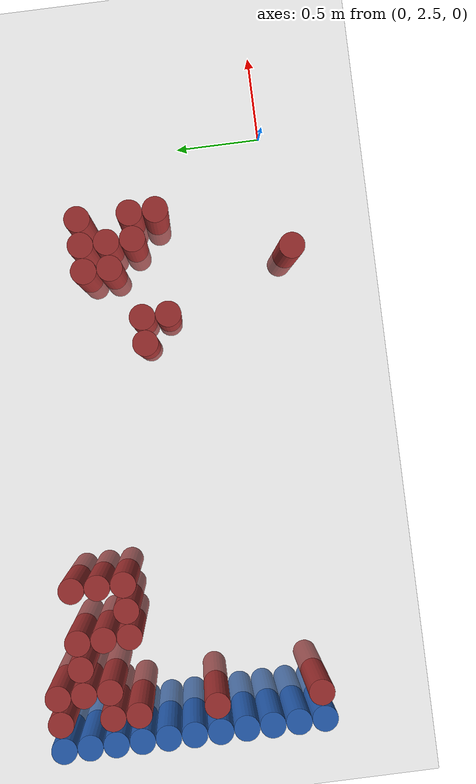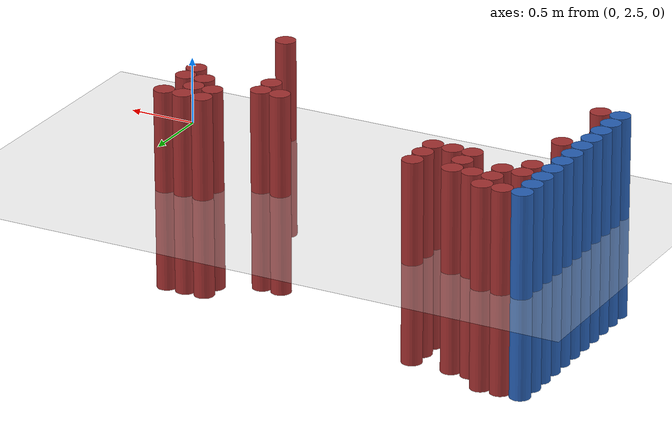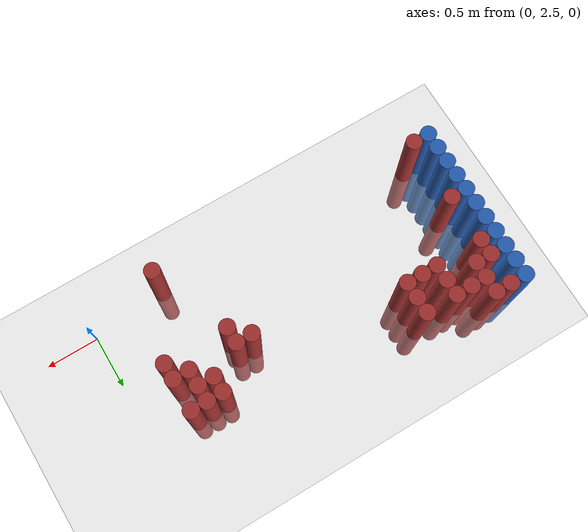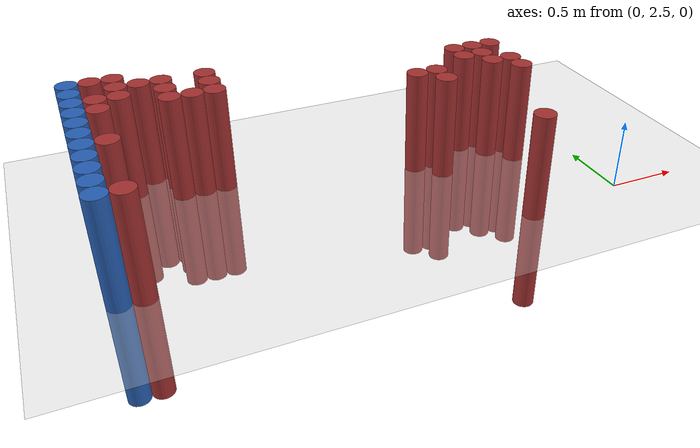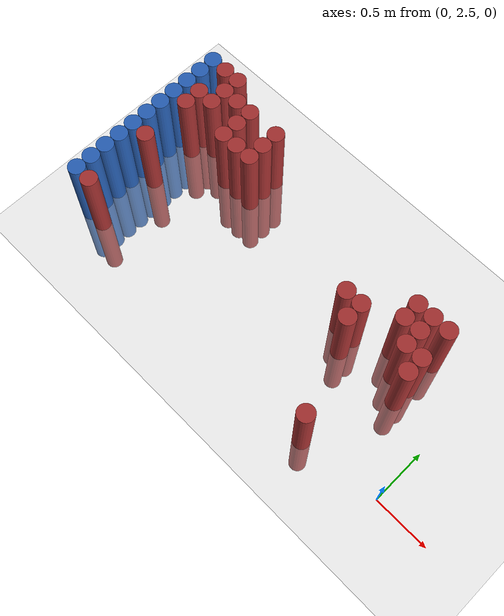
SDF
<sdf version="1.6">
 <world name="default">
  <model name="ground_plane">
   <static>1</static>
   <link name="link">
    <collision name="collision">
     <geometry><plane><normal>0 0 1</normal><size>100 100</size></plane></geometry>
     <surface><friction><ode><mu>100</mu><mu2>50</mu2></ode></friction></surface>
    </collision>
    <visual name="visual">
     <cast_shadows>0</cast_shadows>
     <geometry><plane><normal>0 0 1</normal><size>100 100</size></plane></geometry>
     <material>
      <script><uri>file://media/materials/scripts/gazebo.material</uri><name>Gazebo/Grey</name></script>
     </material>
    </visual>
   </link>
  </model>
  <model name="unit_cylinder_149">
   <static>1</static>
   <pose>-3.425000 2.575000 0.000000 0.000000 0.000000 0.000000</pose>
   <link name="link">
    <inertial>
     <mass>1</mass>
     <inertia><ixx>0.145833</ixx><ixy>0</ixy><ixz>0</ixz><iyy>0.145833</iyy><iyz>0</iyz><izz>0.125</izz></inertia>
    </inertial>
    <collision name="collision">
     <geometry><cylinder><radius>0.075000</radius><length>1.5</length></cylinder></geometry>
    </collision>
    <visual name="visual">
     <geometry><cylinder><radius>0.075000</radius><length>1.5</length></cylinder></geometry>
     <material>
      <ambient>0.152000 0.379000 0.720000 1</ambient>
      <diffuse>0.152000 0.379000 0.720000 1</diffuse>
     </material>
     <material>
      <script><name>Gazebo/Grey</name><uri>file://media/materials/scripts/gazebo.material</uri></script>
     </material>
    </visual>
   </link>
  </model>
  <model name="unit_cylinder_151">
   <static>1</static>
   <pose>-3.425000 2.725000 0.000000 0.000000 0.000000 0.000000</pose>
   <link name="link">
    <inertial>
     <mass>1</mass>
     <inertia><ixx>0.145833</ixx><ixy>0</ixy><ixz>0</ixz><iyy>0.145833</iyy><iyz>0</iyz><izz>0.125</izz></inertia>
    </inertial>
    <collision name="collision">
     <geometry><cylinder><radius>0.075000</radius><length>1.5</length></cylinder></geometry>
    </collision>
    <visual name="visual">
     <geometry><cylinder><radius>0.075000</radius><length>1.5</length></cylinder></geometry>
     <material>
      <ambient>0.152000 0.379000 0.720000 1</ambient>
      <diffuse>0.152000 0.379000 0.720000 1</diffuse>
     </material>
     <material>
      <script><name>Gazebo/Grey</name><uri>file://media/materials/scripts/gazebo.material</uri></script>
     </material>
    </visual>
   </link>
  </model>
  <model name="unit_cylinder_153">
   <static>1</static>
   <pose>-3.425000 2.875000 0.000000 0.000000 0.000000 0.000000</pose>
   <link name="link">
    <inertial>
     <mass>1</mass>
     <inertia><ixx>0.145833</ixx><ixy>0</ixy><ixz>0</ixz><iyy>0.145833</iyy><iyz>0</iyz><izz>0.125</izz></inertia>
    </inertial>
    <collision name="collision">
     <geometry><cylinder><radius>0.075000</radius><length>1.5</length></cylinder></geometry>
    </collision>
    <visual name="visual">
     <geometry><cylinder><radius>0.075000</radius><length>1.5</length></cylinder></geometry>
     <material>
      <ambient>0.152000 0.379000 0.720000 1</ambient>
      <diffuse>0.152000 0.379000 0.720000 1</diffuse>
     </material>
     <material>
      <script><name>Gazebo/Grey</name><uri>file://media/materials/scripts/gazebo.material</uri></script>
     </material>
    </visual>
   </link>
  </model>
  <model name="unit_cylinder_155">
   <static>1</static>
   <pose>-3.425000 3.025000 0.000000 0.000000 0.000000 0.000000</pose>
   <link name="link">
    <inertial>
     <mass>1</mass>
     <inertia><ixx>0.145833</ixx><ixy>0</ixy><ixz>0</ixz><iyy>0.145833</iyy><iyz>0</iyz><izz>0.125</izz></inertia>
    </inertial>
    <collision name="collision">
     <geometry><cylinder><radius>0.075000</radius><length>1.5</length></cylinder></geometry>
    </collision>
    <visual name="visual">
     <geometry><cylinder><radius>0.075000</radius><length>1.5</length></cylinder></geometry>
     <material>
      <ambient>0.152000 0.379000 0.720000 1</ambient>
      <diffuse>0.152000 0.379000 0.720000 1</diffuse>
     </material>
     <material>
      <script><name>Gazebo/Grey</name><uri>file://media/materials/scripts/gazebo.material</uri></script>
     </material>
    </visual>
   </link>
  </model>
  <model name="unit_cylinder_157">
   <static>1</static>
   <pose>-3.425000 3.175000 0.000000 0.000000 0.000000 0.000000</pose>
   <link name="link">
    <inertial>
     <mass>1</mass>
     <inertia><ixx>0.145833</ixx><ixy>0</ixy><ixz>0</ixz><iyy>0.145833</iyy><iyz>0</iyz><izz>0.125</izz></inertia>
    </inertial>
    <collision name="collision">
     <geometry><cylinder><radius>0.075000</radius><length>1.5</length></cylinder></geometry>
    </collision>
    <visual name="visual">
     <geometry><cylinder><radius>0.075000</radius><length>1.5</length></cylinder></geometry>
     <material>
      <ambient>0.152000 0.379000 0.720000 1</ambient>
      <diffuse>0.152000 0.379000 0.720000 1</diffuse>
     </material>
     <material>
      <script><name>Gazebo/Grey</name><uri>file://media/materials/scripts/gazebo.material</uri></script>
     </material>
    </visual>
   </link>
  </model>
  <model name="unit_cylinder_159">
   <static>1</static>
   <pose>-3.425000 3.325000 0.000000 0.000000 0.000000 0.000000</pose>
   <link name="link">
    <inertial>
     <mass>1</mass>
     <inertia><ixx>0.145833</ixx><ixy>0</ixy><ixz>0</ixz><iyy>0.145833</iyy><iyz>0</iyz><izz>0.125</izz></inertia>
    </inertial>
    <collision name="collision">
     <geometry><cylinder><radius>0.075000</radius><length>1.5</length></cylinder></geometry>
    </collision>
    <visual name="visual">
     <geometry><cylinder><radius>0.075000</radius><length>1.5</length></cylinder></geometry>
     <material>
      <ambient>0.152000 0.379000 0.720000 1</ambient>
      <diffuse>0.152000 0.379000 0.720000 1</diffuse>
     </material>
     <material>
      <script><name>Gazebo/Grey</name><uri>file://media/materials/scripts/gazebo.material</uri></script>
     </material>
    </visual>
   </link>
  </model>
  <model name="unit_cylinder_161">
   <static>1</static>
   <pose>-3.425000 3.475000 0.000000 0.000000 0.000000 0.000000</pose>
   <link name="link">
    <inertial>
     <mass>1</mass>
     <inertia><ixx>0.145833</ixx><ixy>0</ixy><ixz>0</ixz><iyy>0.145833</iyy><iyz>0</iyz><izz>0.125</izz></inertia>
    </inertial>
    <collision name="collision">
     <geometry><cylinder><radius>0.075000</radius><length>1.5</length></cylinder></geometry>
    </collision>
    <visual name="visual">
     <geometry><cylinder><radius>0.075000</radius><length>1.5</length></cylinder></geometry>
     <material>
      <ambient>0.152000 0.379000 0.720000 1</ambient>
      <diffuse>0.152000 0.379000 0.720000 1</diffuse>
     </material>
     <material>
      <script><name>Gazebo/Grey</name><uri>file://media/materials/scripts/gazebo.material</uri></script>
     </material>
    </visual>
   </link>
  </model>
  <model name="unit_cylinder_163">
   <static>1</static>
   <pose>-3.425000 3.625000 0.000000 0.000000 0.000000 0.000000</pose>
   <link name="link">
    <inertial>
     <mass>1</mass>
     <inertia><ixx>0.145833</ixx><ixy>0</ixy><ixz>0</ixz><iyy>0.145833</iyy><iyz>0</iyz><izz>0.125</izz></inertia>
    </inertial>
    <collision name="collision">
     <geometry><cylinder><radius>0.075000</radius><length>1.5</length></cylinder></geometry>
    </collision>
    <visual name="visual">
     <geometry><cylinder><radius>0.075000</radius><length>1.5</length></cylinder></geometry>
     <material>
      <ambient>0.152000 0.379000 0.720000 1</ambient>
      <diffuse>0.152000 0.379000 0.720000 1</diffuse>
     </material>
     <material>
      <script><name>Gazebo/Grey</name><uri>file://media/materials/scripts/gazebo.material</uri></script>
     </material>
    </visual>
   </link>
  </model>
  <model name="unit_cylinder_165">
   <static>1</static>
   <pose>-3.425000 3.775000 0.000000 0.000000 0.000000 0.000000</pose>
   <link name="link">
    <inertial>
     <mass>1</mass>
     <inertia><ixx>0.145833</ixx><ixy>0</ixy><ixz>0</ixz><iyy>0.145833</iyy><iyz>0</iyz><izz>0.125</izz></inertia>
    </inertial>
    <collision name="collision">
     <geometry><cylinder><radius>0.075000</radius><length>1.5</length></cylinder></geometry>
    </collision>
    <visual name="visual">
     <geometry><cylinder><radius>0.075000</radius><length>1.5</length></cylinder></geometry>
     <material>
      <ambient>0.152000 0.379000 0.720000 1</ambient>
      <diffuse>0.152000 0.379000 0.720000 1</diffuse>
     </material>
     <material>
      <script><name>Gazebo/Grey</name><uri>file://media/materials/scripts/gazebo.material</uri></script>
     </material>
    </visual>
   </link>
  </model>
  <model name="unit_cylinder_167">
   <static>1</static>
   <pose>-3.425000 3.925000 0.000000 0.000000 0.000000 0.000000</pose>
   <link name="link">
    <inertial>
     <mass>1</mass>
     <inertia><ixx>0.145833</ixx><ixy>0</ixy><ixz>0</ixz><iyy>0.145833</iyy><iyz>0</iyz><izz>0.125</izz></inertia>
    </inertial>
    <collision name="collision">
     <geometry><cylinder><radius>0.075000</radius><length>1.5</length></cylinder></geometry>
    </collision>
    <visual name="visual">
     <geometry><cylinder><radius>0.075000</radius><length>1.5</length></cylinder></geometry>
     <material>
      <ambient>0.152000 0.379000 0.720000 1</ambient>
      <diffuse>0.152000 0.379000 0.720000 1</diffuse>
     </material>
     <material>
      <script><name>Gazebo/Grey</name><uri>file://media/materials/scripts/gazebo.material</uri></script>
     </material>
    </visual>
   </link>
  </model>
  <model name="unit_cylinder_169">
   <static>1</static>
   <pose>-3.425000 4.075000 0.000000 0.000000 0.000000 0.000000</pose>
   <link name="link">
    <inertial>
     <mass>1</mass>
     <inertia><ixx>0.145833</ixx><ixy>0</ixy><ixz>0</ixz><iyy>0.145833</iyy><iyz>0</iyz><izz>0.125</izz></inertia>
    </inertial>
    <collision name="collision">
     <geometry><cylinder><radius>0.075000</radius><length>1.5</length></cylinder></geometry>
    </collision>
    <visual name="visual">
     <geometry><cylinder><radius>0.075000</radius><length>1.5</length></cylinder></geometry>
     <material>
      <ambient>0.152000 0.379000 0.720000 1</ambient>
      <diffuse>0.152000 0.379000 0.720000 1</diffuse>
     </material>
     <material>
      <script><name>Gazebo/Grey</name><uri>file://media/materials/scripts/gazebo.material</uri></script>
     </material>
    </visual>
   </link>
  </model>
  <model name="unit_cylinder_238">
   <static>1</static>
   <pose>-3.425000 2.575000 0.000000 0.000000 0.000000 0.000000</pose>
   <link name="link">
    <inertial>
     <mass>1</mass>
     <inertia><ixx>0.145833</ixx><ixy>0</ixy><ixz>0</ixz><iyy>0.145833</iyy><iyz>0</iyz><izz>0.125</izz></inertia>
    </inertial>
    <collision name="collision">
     <geometry><cylinder><radius>0.075000</radius><length>1.5</length></cylinder></geometry>
    </collision>
    <visual name="visual">
     <geometry><cylinder><radius>0.075000</radius><length>1.5</length></cylinder></geometry>
     <material>
      <ambient>0.152000 0.379000 0.720000 1</ambient>
      <diffuse>0.152000 0.379000 0.720000 1</diffuse>
     </material>
     <material>
      <script><name>Gazebo/Grey</name><uri>file://media/materials/scripts/gazebo.material</uri></script>
     </material>
    </visual>
   </link>
  </model>
  <model name="unit_cylinder_239">
   <static>1</static>
   <pose>-3.425000 2.725000 0.000000 0.000000 0.000000 0.000000</pose>
   <link name="link">
    <inertial>
     <mass>1</mass>
     <inertia><ixx>0.145833</ixx><ixy>0</ixy><ixz>0</ixz><iyy>0.145833</iyy><iyz>0</iyz><izz>0.125</izz></inertia>
    </inertial>
    <collision name="collision">
     <geometry><cylinder><radius>0.075000</radius><length>1.5</length></cylinder></geometry>
    </collision>
    <visual name="visual">
     <geometry><cylinder><radius>0.075000</radius><length>1.5</length></cylinder></geometry>
     <material>
      <ambient>0.152000 0.379000 0.720000 1</ambient>
      <diffuse>0.152000 0.379000 0.720000 1</diffuse>
     </material>
     <material>
      <script><name>Gazebo/Grey</name><uri>file://media/materials/scripts/gazebo.material</uri></script>
     </material>
    </visual>
   </link>
  </model>
  <model name="unit_cylinder_240">
   <static>1</static>
   <pose>-3.425000 2.875000 0.000000 0.000000 0.000000 0.000000</pose>
   <link name="link">
    <inertial>
     <mass>1</mass>
     <inertia><ixx>0.145833</ixx><ixy>0</ixy><ixz>0</ixz><iyy>0.145833</iyy><iyz>0</iyz><izz>0.125</izz></inertia>
    </inertial>
    <collision name="collision">
     <geometry><cylinder><radius>0.075000</radius><length>1.5</length></cylinder></geometry>
    </collision>
    <visual name="visual">
     <geometry><cylinder><radius>0.075000</radius><length>1.5</length></cylinder></geometry>
     <material>
      <ambient>0.152000 0.379000 0.720000 1</ambient>
      <diffuse>0.152000 0.379000 0.720000 1</diffuse>
     </material>
     <material>
      <script><name>Gazebo/Grey</name><uri>file://media/materials/scripts/gazebo.material</uri></script>
     </material>
    </visual>
   </link>
  </model>
  <model name="unit_cylinder_241">
   <static>1</static>
   <pose>-3.425000 3.025000 0.000000 0.000000 0.000000 0.000000</pose>
   <link name="link">
    <inertial>
     <mass>1</mass>
     <inertia><ixx>0.145833</ixx><ixy>0</ixy><ixz>0</ixz><iyy>0.145833</iyy><iyz>0</iyz><izz>0.125</izz></inertia>
    </inertial>
    <collision name="collision">
     <geometry><cylinder><radius>0.075000</radius><length>1.5</length></cylinder></geometry>
    </collision>
    <visual name="visual">
     <geometry><cylinder><radius>0.075000</radius><length>1.5</length></cylinder></geometry>
     <material>
      <ambient>0.152000 0.379000 0.720000 1</ambient>
      <diffuse>0.152000 0.379000 0.720000 1</diffuse>
     </material>
     <material>
      <script><name>Gazebo/Grey</name><uri>file://media/materials/scripts/gazebo.material</uri></script>
     </material>
    </visual>
   </link>
  </model>
  <model name="unit_cylinder_242">
   <static>1</static>
   <pose>-3.425000 3.175000 0.000000 0.000000 0.000000 0.000000</pose>
   <link name="link">
    <inertial>
     <mass>1</mass>
     <inertia><ixx>0.145833</ixx><ixy>0</ixy><ixz>0</ixz><iyy>0.145833</iyy><iyz>0</iyz><izz>0.125</izz></inertia>
    </inertial>
    <collision name="collision">
     <geometry><cylinder><radius>0.075000</radius><length>1.5</length></cylinder></geometry>
    </collision>
    <visual name="visual">
     <geometry><cylinder><radius>0.075000</radius><length>1.5</length></cylinder></geometry>
     <material>
      <ambient>0.152000 0.379000 0.720000 1</ambient>
      <diffuse>0.152000 0.379000 0.720000 1</diffuse>
     </material>
     <material>
      <script><name>Gazebo/Grey</name><uri>file://media/materials/scripts/gazebo.material</uri></script>
     </material>
    </visual>
   </link>
  </model>
  <model name="unit_cylinder_243">
   <static>1</static>
   <pose>-3.425000 3.325000 0.000000 0.000000 0.000000 0.000000</pose>
   <link name="link">
    <inertial>
     <mass>1</mass>
     <inertia><ixx>0.145833</ixx><ixy>0</ixy><ixz>0</ixz><iyy>0.145833</iyy><iyz>0</iyz><izz>0.125</izz></inertia>
    </inertial>
    <collision name="collision">
     <geometry><cylinder><radius>0.075000</radius><length>1.5</length></cylinder></geometry>
    </collision>
    <visual name="visual">
     <geometry><cylinder><radius>0.075000</radius><length>1.5</length></cylinder></geometry>
     <material>
      <ambient>0.152000 0.379000 0.720000 1</ambient>
      <diffuse>0.152000 0.379000 0.720000 1</diffuse>
     </material>
     <material>
      <script><name>Gazebo/Grey</name><uri>file://media/materials/scripts/gazebo.material</uri></script>
     </material>
    </visual>
   </link>
  </model>
  <model name="unit_cylinder_244">
   <static>1</static>
   <pose>-3.425000 3.475000 0.000000 0.000000 0.000000 0.000000</pose>
   <link name="link">
    <inertial>
     <mass>1</mass>
     <inertia><ixx>0.145833</ixx><ixy>0</ixy><ixz>0</ixz><iyy>0.145833</iyy><iyz>0</iyz><izz>0.125</izz></inertia>
    </inertial>
    <collision name="collision">
     <geometry><cylinder><radius>0.075000</radius><length>1.5</length></cylinder></geometry>
    </collision>
    <visual name="visual">
     <geometry><cylinder><radius>0.075000</radius><length>1.5</length></cylinder></geometry>
     <material>
      <ambient>0.152000 0.379000 0.720000 1</ambient>
      <diffuse>0.152000 0.379000 0.720000 1</diffuse>
     </material>
     <material>
      <script><name>Gazebo/Grey</name><uri>file://media/materials/scripts/gazebo.material</uri></script>
     </material>
    </visual>
   </link>
  </model>
  <model name="unit_cylinder_245">
   <static>1</static>
   <pose>-3.425000 3.625000 0.000000 0.000000 0.000000 0.000000</pose>
   <link name="link">
    <inertial>
     <mass>1</mass>
     <inertia><ixx>0.145833</ixx><ixy>0</ixy><ixz>0</ixz><iyy>0.145833</iyy><iyz>0</iyz><izz>0.125</izz></inertia>
    </inertial>
    <collision name="collision">
     <geometry><cylinder><radius>0.075000</radius><length>1.5</length></cylinder></geometry>
    </collision>
    <visual name="visual">
     <geometry><cylinder><radius>0.075000</radius><length>1.5</length></cylinder></geometry>
     <material>
      <ambient>0.152000 0.379000 0.720000 1</ambient>
      <diffuse>0.152000 0.379000 0.720000 1</diffuse>
     </material>
     <material>
      <script><name>Gazebo/Grey</name><uri>file://media/materials/scripts/gazebo.material</uri></script>
     </material>
    </visual>
   </link>
  </model>
  <model name="unit_cylinder_246">
   <static>1</static>
   <pose>-3.425000 3.775000 0.000000 0.000000 0.000000 0.000000</pose>
   <link name="link">
    <inertial>
     <mass>1</mass>
     <inertia><ixx>0.145833</ixx><ixy>0</ixy><ixz>0</ixz><iyy>0.145833</iyy><iyz>0</iyz><izz>0.125</izz></inertia>
    </inertial>
    <collision name="collision">
     <geometry><cylinder><radius>0.075000</radius><length>1.5</length></cylinder></geometry>
    </collision>
    <visual name="visual">
     <geometry><cylinder><radius>0.075000</radius><length>1.5</length></cylinder></geometry>
     <material>
      <ambient>0.152000 0.379000 0.720000 1</ambient>
      <diffuse>0.152000 0.379000 0.720000 1</diffuse>
     </material>
     <material>
      <script><name>Gazebo/Grey</name><uri>file://media/materials/scripts/gazebo.material</uri></script>
     </material>
    </visual>
   </link>
  </model>
  <model name="unit_cylinder_247">
   <static>1</static>
   <pose>-3.425000 3.925000 0.000000 0.000000 0.000000 0.000000</pose>
   <link name="link">
    <inertial>
     <mass>1</mass>
     <inertia><ixx>0.145833</ixx><ixy>0</ixy><ixz>0</ixz><iyy>0.145833</iyy><iyz>0</iyz><izz>0.125</izz></inertia>
    </inertial>
    <collision name="collision">
     <geometry><cylinder><radius>0.075000</radius><length>1.5</length></cylinder></geometry>
    </collision>
    <visual name="visual">
     <geometry><cylinder><radius>0.075000</radius><length>1.5</length></cylinder></geometry>
     <material>
      <ambient>0.152000 0.379000 0.720000 1</ambient>
      <diffuse>0.152000 0.379000 0.720000 1</diffuse>
     </material>
     <material>
      <script><name>Gazebo/Grey</name><uri>file://media/materials/scripts/gazebo.material</uri></script>
     </material>
    </visual>
   </link>
  </model>
  <model name="unit_cylinder_248">
   <static>1</static>
   <pose>-3.425000 4.075000 0.000000 0.000000 0.000000 0.000000</pose>
   <link name="link">
    <inertial>
     <mass>1</mass>
     <inertia><ixx>0.145833</ixx><ixy>0</ixy><ixz>0</ixz><iyy>0.145833</iyy><iyz>0</iyz><izz>0.125</izz></inertia>
    </inertial>
    <collision name="collision">
     <geometry><cylinder><radius>0.075000</radius><length>1.5</length></cylinder></geometry>
    </collision>
    <visual name="visual">
     <geometry><cylinder><radius>0.075000</radius><length>1.5</length></cylinder></geometry>
     <material>
      <ambient>0.152000 0.379000 0.720000 1</ambient>
      <diffuse>0.152000 0.379000 0.720000 1</diffuse>
     </material>
     <material>
      <script><name>Gazebo/Grey</name><uri>file://media/materials/scripts/gazebo.material</uri></script>
     </material>
    </visual>
   </link>
  </model>
  <model name="unit_cylinder_273">
   <static>1</static>
   <pose>-3.275000 2.575000 0.000000 0.000000 0.000000 0.000000</pose>
   <link name="link">
    <inertial>
     <mass>1</mass>
     <inertia><ixx>0.145833</ixx><ixy>0</ixy><ixz>0</ixz><iyy>0.145833</iyy><iyz>0</iyz><izz>0.125</izz></inertia>
    </inertial>
    <collision name="collision">
     <geometry><cylinder><radius>0.075000</radius><length>1.5</length></cylinder></geometry>
    </collision>
    <visual name="visual">
     <geometry><cylinder><radius>0.075000</radius><length>1.5</length></cylinder></geometry>
     <material>
      <ambient>0.648000 0.192000 0.192000 1</ambient>
      <diffuse>0.648000 0.192000 0.192000 1</diffuse>
     </material>
     <material>
      <script><name>Gazebo/Grey</name><uri>file://media/materials/scripts/gazebo.material</uri></script>
     </material>
    </visual>
   </link>
  </model>
  <model name="unit_cylinder_274">
   <static>1</static>
   <pose>-3.275000 3.175000 0.000000 0.000000 0.000000 0.000000</pose>
   <link name="link">
    <inertial>
     <mass>1</mass>
     <inertia><ixx>0.145833</ixx><ixy>0</ixy><ixz>0</ixz><iyy>0.145833</iyy><iyz>0</iyz><izz>0.125</izz></inertia>
    </inertial>
    <collision name="collision">
     <geometry><cylinder><radius>0.075000</radius><length>1.5</length></cylinder></geometry>
    </collision>
    <visual name="visual">
     <geometry><cylinder><radius>0.075000</radius><length>1.5</length></cylinder></geometry>
     <material>
      <ambient>0.648000 0.192000 0.192000 1</ambient>
      <diffuse>0.648000 0.192000 0.192000 1</diffuse>
     </material>
     <material>
      <script><name>Gazebo/Grey</name><uri>file://media/materials/scripts/gazebo.material</uri></script>
     </material>
    </visual>
   </link>
  </model>
  <model name="unit_cylinder_275">
   <static>1</static>
   <pose>-3.275000 3.625000 0.000000 0.000000 0.000000 0.000000</pose>
   <link name="link">
    <inertial>
     <mass>1</mass>
     <inertia><ixx>0.145833</ixx><ixy>0</ixy><ixz>0</ixz><iyy>0.145833</iyy><iyz>0</iyz><izz>0.125</izz></inertia>
    </inertial>
    <collision name="collision">
     <geometry><cylinder><radius>0.075000</radius><length>1.5</length></cylinder></geometry>
    </collision>
    <visual name="visual">
     <geometry><cylinder><radius>0.075000</radius><length>1.5</length></cylinder></geometry>
     <material>
      <ambient>0.648000 0.192000 0.192000 1</ambient>
      <diffuse>0.648000 0.192000 0.192000 1</diffuse>
     </material>
     <material>
      <script><name>Gazebo/Grey</name><uri>file://media/materials/scripts/gazebo.material</uri></script>
     </material>
    </visual>
   </link>
  </model>
  <model name="unit_cylinder_276">
   <static>1</static>
   <pose>-3.275000 3.775000 0.000000 0.000000 0.000000 0.000000</pose>
   <link name="link">
    <inertial>
     <mass>1</mass>
     <inertia><ixx>0.145833</ixx><ixy>0</ixy><ixz>0</ixz><iyy>0.145833</iyy><iyz>0</iyz><izz>0.125</izz></inertia>
    </inertial>
    <collision name="collision">
     <geometry><cylinder><radius>0.075000</radius><length>1.5</length></cylinder></geometry>
    </collision>
    <visual name="visual">
     <geometry><cylinder><radius>0.075000</radius><length>1.5</length></cylinder></geometry>
     <material>
      <ambient>0.648000 0.192000 0.192000 1</ambient>
      <diffuse>0.648000 0.192000 0.192000 1</diffuse>
     </material>
     <material>
      <script><name>Gazebo/Grey</name><uri>file://media/materials/scripts/gazebo.material</uri></script>
     </material>
    </visual>
   </link>
  </model>
  <model name="unit_cylinder_277">
   <static>1</static>
   <pose>-3.275000 4.075000 0.000000 0.000000 0.000000 0.000000</pose>
   <link name="link">
    <inertial>
     <mass>1</mass>
     <inertia><ixx>0.145833</ixx><ixy>0</ixy><ixz>0</ixz><iyy>0.145833</iyy><iyz>0</iyz><izz>0.125</izz></inertia>
    </inertial>
    <collision name="collision">
     <geometry><cylinder><radius>0.075000</radius><length>1.5</length></cylinder></geometry>
    </collision>
    <visual name="visual">
     <geometry><cylinder><radius>0.075000</radius><length>1.5</length></cylinder></geometry>
     <material>
      <ambient>0.648000 0.192000 0.192000 1</ambient>
      <diffuse>0.648000 0.192000 0.192000 1</diffuse>
     </material>
     <material>
      <script><name>Gazebo/Grey</name><uri>file://media/materials/scripts/gazebo.material</uri></script>
     </material>
    </visual>
   </link>
  </model>
  <model name="unit_cylinder_285">
   <static>1</static>
   <pose>-3.125000 3.775000 0.000000 0.000000 0.000000 0.000000</pose>
   <link name="link">
    <inertial>
     <mass>1</mass>
     <inertia><ixx>0.145833</ixx><ixy>0</ixy><ixz>0</ixz><iyy>0.145833</iyy><iyz>0</iyz><izz>0.125</izz></inertia>
    </inertial>
    <collision name="collision">
     <geometry><cylinder><radius>0.075000</radius><length>1.5</length></cylinder></geometry>
    </collision>
    <visual name="visual">
     <geometry><cylinder><radius>0.075000</radius><length>1.5</length></cylinder></geometry>
     <material>
      <ambient>0.648000 0.192000 0.192000 1</ambient>
      <diffuse>0.648000 0.192000 0.192000 1</diffuse>
     </material>
     <material>
      <script><name>Gazebo/Grey</name><uri>file://media/materials/scripts/gazebo.material</uri></script>
     </material>
    </visual>
   </link>
  </model>
  <model name="unit_cylinder_286">
   <static>1</static>
   <pose>-3.125000 3.925000 0.000000 0.000000 0.000000 0.000000</pose>
   <link name="link">
    <inertial>
     <mass>1</mass>
     <inertia><ixx>0.145833</ixx><ixy>0</ixy><ixz>0</ixz><iyy>0.145833</iyy><iyz>0</iyz><izz>0.125</izz></inertia>
    </inertial>
    <collision name="collision">
     <geometry><cylinder><radius>0.075000</radius><length>1.5</length></cylinder></geometry>
    </collision>
    <visual name="visual">
     <geometry><cylinder><radius>0.075000</radius><length>1.5</length></cylinder></geometry>
     <material>
      <ambient>0.648000 0.192000 0.192000 1</ambient>
      <diffuse>0.648000 0.192000 0.192000 1</diffuse>
     </material>
     <material>
      <script><name>Gazebo/Grey</name><uri>file://media/materials/scripts/gazebo.material</uri></script>
     </material>
    </visual>
   </link>
  </model>
  <model name="unit_cylinder_287">
   <static>1</static>
   <pose>-3.125000 4.075000 0.000000 0.000000 0.000000 0.000000</pose>
   <link name="link">
    <inertial>
     <mass>1</mass>
     <inertia><ixx>0.145833</ixx><ixy>0</ixy><ixz>0</ixz><iyy>0.145833</iyy><iyz>0</iyz><izz>0.125</izz></inertia>
    </inertial>
    <collision name="collision">
     <geometry><cylinder><radius>0.075000</radius><length>1.5</length></cylinder></geometry>
    </collision>
    <visual name="visual">
     <geometry><cylinder><radius>0.075000</radius><length>1.5</length></cylinder></geometry>
     <material>
      <ambient>0.648000 0.192000 0.192000 1</ambient>
      <diffuse>0.648000 0.192000 0.192000 1</diffuse>
     </material>
     <material>
      <script><name>Gazebo/Grey</name><uri>file://media/materials/scripts/gazebo.material</uri></script>
     </material>
    </visual>
   </link>
  </model>
  <model name="unit_cylinder_288">
   <static>1</static>
   <pose>-2.975000 3.925000 0.000000 0.000000 0.000000 0.000000</pose>
   <link name="link">
    <inertial>
     <mass>1</mass>
     <inertia><ixx>0.145833</ixx><ixy>0</ixy><ixz>0</ixz><iyy>0.145833</iyy><iyz>0</iyz><izz>0.125</izz></inertia>
    </inertial>
    <collision name="collision">
     <geometry><cylinder><radius>0.075000</radius><length>1.5</length></cylinder></geometry>
    </collision>
    <visual name="visual">
     <geometry><cylinder><radius>0.075000</radius><length>1.5</length></cylinder></geometry>
     <material>
      <ambient>0.648000 0.192000 0.192000 1</ambient>
      <diffuse>0.648000 0.192000 0.192000 1</diffuse>
     </material>
     <material>
      <script><name>Gazebo/Grey</name><uri>file://media/materials/scripts/gazebo.material</uri></script>
     </material>
    </visual>
   </link>
  </model>
  <model name="unit_cylinder_292">
   <static>1</static>
   <pose>-2.825000 3.625000 0.000000 0.000000 0.000000 0.000000</pose>
   <link name="link">
    <inertial>
     <mass>1</mass>
     <inertia><ixx>0.145833</ixx><ixy>0</ixy><ixz>0</ixz><iyy>0.145833</iyy><iyz>0</iyz><izz>0.125</izz></inertia>
    </inertial>
    <collision name="collision">
     <geometry><cylinder><radius>0.075000</radius><length>1.5</length></cylinder></geometry>
    </collision>
    <visual name="visual">
     <geometry><cylinder><radius>0.075000</radius><length>1.5</length></cylinder></geometry>
     <material>
      <ambient>0.648000 0.192000 0.192000 1</ambient>
      <diffuse>0.648000 0.192000 0.192000 1</diffuse>
     </material>
     <material>
      <script><name>Gazebo/Grey</name><uri>file://media/materials/scripts/gazebo.material</uri></script>
     </material>
    </visual>
   </link>
  </model>
  <model name="unit_cylinder_293">
   <static>1</static>
   <pose>-2.825000 3.775000 0.000000 0.000000 0.000000 0.000000</pose>
   <link name="link">
    <inertial>
     <mass>1</mass>
     <inertia><ixx>0.145833</ixx><ixy>0</ixy><ixz>0</ixz><iyy>0.145833</iyy><iyz>0</iyz><izz>0.125</izz></inertia>
    </inertial>
    <collision name="collision">
     <geometry><cylinder><radius>0.075000</radius><length>1.5</length></cylinder></geometry>
    </collision>
    <visual name="visual">
     <geometry><cylinder><radius>0.075000</radius><length>1.5</length></cylinder></geometry>
     <material>
      <ambient>0.648000 0.192000 0.192000 1</ambient>
      <diffuse>0.648000 0.192000 0.192000 1</diffuse>
     </material>
     <material>
      <script><name>Gazebo/Grey</name><uri>file://media/materials/scripts/gazebo.material</uri></script>
     </material>
    </visual>
   </link>
  </model>
  <model name="unit_cylinder_294">
   <static>1</static>
   <pose>-2.825000 3.925000 0.000000 0.000000 0.000000 0.000000</pose>
   <link name="link">
    <inertial>
     <mass>1</mass>
     <inertia><ixx>0.145833</ixx><ixy>0</ixy><ixz>0</ixz><iyy>0.145833</iyy><iyz>0</iyz><izz>0.125</izz></inertia>
    </inertial>
    <collision name="collision">
     <geometry><cylinder><radius>0.075000</radius><length>1.5</length></cylinder></geometry>
    </collision>
    <visual name="visual">
     <geometry><cylinder><radius>0.075000</radius><length>1.5</length></cylinder></geometry>
     <material>
      <ambient>0.648000 0.192000 0.192000 1</ambient>
      <diffuse>0.648000 0.192000 0.192000 1</diffuse>
     </material>
     <material>
      <script><name>Gazebo/Grey</name><uri>file://media/materials/scripts/gazebo.material</uri></script>
     </material>
    </visual>
   </link>
  </model>
  <model name="unit_cylinder_300">
   <static>1</static>
   <pose>-2.675000 3.625000 0.000000 0.000000 0.000000 0.000000</pose>
   <link name="link">
    <inertial>
     <mass>1</mass>
     <inertia><ixx>0.145833</ixx><ixy>0</ixy><ixz>0</ixz><iyy>0.145833</iyy><iyz>0</iyz><izz>0.125</izz></inertia>
    </inertial>
    <collision name="collision">
     <geometry><cylinder><radius>0.075000</radius><length>1.5</length></cylinder></geometry>
    </collision>
    <visual name="visual">
     <geometry><cylinder><radius>0.075000</radius><length>1.5</length></cylinder></geometry>
     <material>
      <ambient>0.648000 0.192000 0.192000 1</ambient>
      <diffuse>0.648000 0.192000 0.192000 1</diffuse>
     </material>
     <material>
      <script><name>Gazebo/Grey</name><uri>file://media/materials/scripts/gazebo.material</uri></script>
     </material>
    </visual>
   </link>
  </model>
  <model name="unit_cylinder_306">
   <static>1</static>
   <pose>-2.525000 3.625000 0.000000 0.000000 0.000000 0.000000</pose>
   <link name="link">
    <inertial>
     <mass>1</mass>
     <inertia><ixx>0.145833</ixx><ixy>0</ixy><ixz>0</ixz><iyy>0.145833</iyy><iyz>0</iyz><izz>0.125</izz></inertia>
    </inertial>
    <collision name="collision">
     <geometry><cylinder><radius>0.075000</radius><length>1.5</length></cylinder></geometry>
    </collision>
    <visual name="visual">
     <geometry><cylinder><radius>0.075000</radius><length>1.5</length></cylinder></geometry>
     <material>
      <ambient>0.648000 0.192000 0.192000 1</ambient>
      <diffuse>0.648000 0.192000 0.192000 1</diffuse>
     </material>
     <material>
      <script><name>Gazebo/Grey</name><uri>file://media/materials/scripts/gazebo.material</uri></script>
     </material>
    </visual>
   </link>
  </model>
  <model name="unit_cylinder_307">
   <static>1</static>
   <pose>-2.525000 3.775000 0.000000 0.000000 0.000000 0.000000</pose>
   <link name="link">
    <inertial>
     <mass>1</mass>
     <inertia><ixx>0.145833</ixx><ixy>0</ixy><ixz>0</ixz><iyy>0.145833</iyy><iyz>0</iyz><izz>0.125</izz></inertia>
    </inertial>
    <collision name="collision">
     <geometry><cylinder><radius>0.075000</radius><length>1.5</length></cylinder></geometry>
    </collision>
    <visual name="visual">
     <geometry><cylinder><radius>0.075000</radius><length>1.5</length></cylinder></geometry>
     <material>
      <ambient>0.648000 0.192000 0.192000 1</ambient>
      <diffuse>0.648000 0.192000 0.192000 1</diffuse>
     </material>
     <material>
      <script><name>Gazebo/Grey</name><uri>file://media/materials/scripts/gazebo.material</uri></script>
     </material>
    </visual>
   </link>
  </model>
  <model name="unit_cylinder_308">
   <static>1</static>
   <pose>-2.525000 3.925000 0.000000 0.000000 0.000000 0.000000</pose>
   <link name="link">
    <inertial>
     <mass>1</mass>
     <inertia><ixx>0.145833</ixx><ixy>0</ixy><ixz>0</ixz><iyy>0.145833</iyy><iyz>0</iyz><izz>0.125</izz></inertia>
    </inertial>
    <collision name="collision">
     <geometry><cylinder><radius>0.075000</radius><length>1.5</length></cylinder></geometry>
    </collision>
    <visual name="visual">
     <geometry><cylinder><radius>0.075000</radius><length>1.5</length></cylinder></geometry>
     <material>
      <ambient>0.648000 0.192000 0.192000 1</ambient>
      <diffuse>0.648000 0.192000 0.192000 1</diffuse>
     </material>
     <material>
      <script><name>Gazebo/Grey</name><uri>file://media/materials/scripts/gazebo.material</uri></script>
     </material>
    </visual>
   </link>
  </model>
  <model name="unit_cylinder_349">
   <static>1</static>
   <pose>-1.175000 3.325000 0.000000 0.000000 0.000000 0.000000</pose>
   <link name="link">
    <inertial>
     <mass>1</mass>
     <inertia><ixx>0.145833</ixx><ixy>0</ixy><ixz>0</ixz><iyy>0.145833</iyy><iyz>0</iyz><izz>0.125</izz></inertia>
    </inertial>
    <collision name="collision">
     <geometry><cylinder><radius>0.075000</radius><length>1.5</length></cylinder></geometry>
    </collision>
    <visual name="visual">
     <geometry><cylinder><radius>0.075000</radius><length>1.5</length></cylinder></geometry>
     <material>
      <ambient>0.648000 0.192000 0.192000 1</ambient>
      <diffuse>0.648000 0.192000 0.192000 1</diffuse>
     </material>
     <material>
      <script><name>Gazebo/Grey</name><uri>file://media/materials/scripts/gazebo.material</uri></script>
     </material>
    </visual>
   </link>
  </model>
  <model name="unit_cylinder_355">
   <static>1</static>
   <pose>-1.025000 3.175000 0.000000 0.000000 0.000000 0.000000</pose>
   <link name="link">
    <inertial>
     <mass>1</mass>
     <inertia><ixx>0.145833</ixx><ixy>0</ixy><ixz>0</ixz><iyy>0.145833</iyy><iyz>0</iyz><izz>0.125</izz></inertia>
    </inertial>
    <collision name="collision">
     <geometry><cylinder><radius>0.075000</radius><length>1.5</length></cylinder></geometry>
    </collision>
    <visual name="visual">
     <geometry><cylinder><radius>0.075000</radius><length>1.5</length></cylinder></geometry>
     <material>
      <ambient>0.648000 0.192000 0.192000 1</ambient>
      <diffuse>0.648000 0.192000 0.192000 1</diffuse>
     </material>
     <material>
      <script><name>Gazebo/Grey</name><uri>file://media/materials/scripts/gazebo.material</uri></script>
     </material>
    </visual>
   </link>
  </model>
  <model name="unit_cylinder_356">
   <static>1</static>
   <pose>-1.025000 3.325000 0.000000 0.000000 0.000000 0.000000</pose>
   <link name="link">
    <inertial>
     <mass>1</mass>
     <inertia><ixx>0.145833</ixx><ixy>0</ixy><ixz>0</ixz><iyy>0.145833</iyy><iyz>0</iyz><izz>0.125</izz></inertia>
    </inertial>
    <collision name="collision">
     <geometry><cylinder><radius>0.075000</radius><length>1.5</length></cylinder></geometry>
    </collision>
    <visual name="visual">
     <geometry><cylinder><radius>0.075000</radius><length>1.5</length></cylinder></geometry>
     <material>
      <ambient>0.648000 0.192000 0.192000 1</ambient>
      <diffuse>0.648000 0.192000 0.192000 1</diffuse>
     </material>
     <material>
      <script><name>Gazebo/Grey</name><uri>file://media/materials/scripts/gazebo.material</uri></script>
     </material>
    </visual>
   </link>
  </model>
  <model name="unit_cylinder_362">
   <static>1</static>
   <pose>-0.725000 2.425000 0.000000 0.000000 0.000000 0.000000</pose>
   <link name="link">
    <inertial>
     <mass>1</mass>
     <inertia><ixx>0.145833</ixx><ixy>0</ixy><ixz>0</ixz><iyy>0.145833</iyy><iyz>0</iyz><izz>0.125</izz></inertia>
    </inertial>
    <collision name="collision">
     <geometry><cylinder><radius>0.075000</radius><length>1.5</length></cylinder></geometry>
    </collision>
    <visual name="visual">
     <geometry><cylinder><radius>0.075000</radius><length>1.5</length></cylinder></geometry>
     <material>
      <ambient>0.648000 0.192000 0.192000 1</ambient>
      <diffuse>0.648000 0.192000 0.192000 1</diffuse>
     </material>
     <material>
      <script><name>Gazebo/Grey</name><uri>file://media/materials/scripts/gazebo.material</uri></script>
     </material>
    </visual>
   </link>
  </model>
  <model name="unit_cylinder_363">
   <static>1</static>
   <pose>-0.725000 3.475000 0.000000 0.000000 0.000000 0.000000</pose>
   <link name="link">
    <inertial>
     <mass>1</mass>
     <inertia><ixx>0.145833</ixx><ixy>0</ixy><ixz>0</ixz><iyy>0.145833</iyy><iyz>0</iyz><izz>0.125</izz></inertia>
    </inertial>
    <collision name="collision">
     <geometry><cylinder><radius>0.075000</radius><length>1.5</length></cylinder></geometry>
    </collision>
    <visual name="visual">
     <geometry><cylinder><radius>0.075000</radius><length>1.5</length></cylinder></geometry>
     <material>
      <ambient>0.648000 0.192000 0.192000 1</ambient>
      <diffuse>0.648000 0.192000 0.192000 1</diffuse>
     </material>
     <material>
      <script><name>Gazebo/Grey</name><uri>file://media/materials/scripts/gazebo.material</uri></script>
     </material>
    </visual>
   </link>
  </model>
  <model name="unit_cylinder_364">
   <static>1</static>
   <pose>-0.725000 3.625000 0.000000 0.000000 0.000000 0.000000</pose>
   <link name="link">
    <inertial>
     <mass>1</mass>
     <inertia><ixx>0.145833</ixx><ixy>0</ixy><ixz>0</ixz><iyy>0.145833</iyy><iyz>0</iyz><izz>0.125</izz></inertia>
    </inertial>
    <collision name="collision">
     <geometry><cylinder><radius>0.075000</radius><length>1.5</length></cylinder></geometry>
    </collision>
    <visual name="visual">
     <geometry><cylinder><radius>0.075000</radius><length>1.5</length></cylinder></geometry>
     <material>
      <ambient>0.648000 0.192000 0.192000 1</ambient>
      <diffuse>0.648000 0.192000 0.192000 1</diffuse>
     </material>
     <material>
      <script><name>Gazebo/Grey</name><uri>file://media/materials/scripts/gazebo.material</uri></script>
     </material>
    </visual>
   </link>
  </model>
  <model name="unit_cylinder_365">
   <static>1</static>
   <pose>-0.575000 3.325000 0.000000 0.000000 0.000000 0.000000</pose>
   <link name="link">
    <inertial>
     <mass>1</mass>
     <inertia><ixx>0.145833</ixx><ixy>0</ixy><ixz>0</ixz><iyy>0.145833</iyy><iyz>0</iyz><izz>0.125</izz></inertia>
    </inertial>
    <collision name="collision">
     <geometry><cylinder><radius>0.075000</radius><length>1.5</length></cylinder></geometry>
    </collision>
    <visual name="visual">
     <geometry><cylinder><radius>0.075000</radius><length>1.5</length></cylinder></geometry>
     <material>
      <ambient>0.648000 0.192000 0.192000 1</ambient>
      <diffuse>0.648000 0.192000 0.192000 1</diffuse>
     </material>
     <material>
      <script><name>Gazebo/Grey</name><uri>file://media/materials/scripts/gazebo.material</uri></script>
     </material>
    </visual>
   </link>
  </model>
  <model name="unit_cylinder_366">
   <static>1</static>
   <pose>-0.575000 3.475000 0.000000 0.000000 0.000000 0.000000</pose>
   <link name="link">
    <inertial>
     <mass>1</mass>
     <inertia><ixx>0.145833</ixx><ixy>0</ixy><ixz>0</ixz><iyy>0.145833</iyy><iyz>0</iyz><izz>0.125</izz></inertia>
    </inertial>
    <collision name="collision">
     <geometry><cylinder><radius>0.075000</radius><length>1.5</length></cylinder></geometry>
    </collision>
    <visual name="visual">
     <geometry><cylinder><radius>0.075000</radius><length>1.5</length></cylinder></geometry>
     <material>
      <ambient>0.648000 0.192000 0.192000 1</ambient>
      <diffuse>0.648000 0.192000 0.192000 1</diffuse>
     </material>
     <material>
      <script><name>Gazebo/Grey</name><uri>file://media/materials/scripts/gazebo.material</uri></script>
     </material>
    </visual>
   </link>
  </model>
  <model name="unit_cylinder_367">
   <static>1</static>
   <pose>-0.575000 3.625000 0.000000 0.000000 0.000000 0.000000</pose>
   <link name="link">
    <inertial>
     <mass>1</mass>
     <inertia><ixx>0.145833</ixx><ixy>0</ixy><ixz>0</ixz><iyy>0.145833</iyy><iyz>0</iyz><izz>0.125</izz></inertia>
    </inertial>
    <collision name="collision">
     <geometry><cylinder><radius>0.075000</radius><length>1.5</length></cylinder></geometry>
    </collision>
    <visual name="visual">
     <geometry><cylinder><radius>0.075000</radius><length>1.5</length></cylinder></geometry>
     <material>
      <ambient>0.648000 0.192000 0.192000 1</ambient>
      <diffuse>0.648000 0.192000 0.192000 1</diffuse>
     </material>
     <material>
      <script><name>Gazebo/Grey</name><uri>file://media/materials/scripts/gazebo.material</uri></script>
     </material>
    </visual>
   </link>
  </model>
  <model name="unit_cylinder_370">
   <static>1</static>
   <pose>-0.425000 3.175000 0.000000 0.000000 0.000000 0.000000</pose>
   <link name="link">
    <inertial>
     <mass>1</mass>
     <inertia><ixx>0.145833</ixx><ixy>0</ixy><ixz>0</ixz><iyy>0.145833</iyy><iyz>0</iyz><izz>0.125</izz></inertia>
    </inertial>
    <collision name="collision">
     <geometry><cylinder><radius>0.075000</radius><length>1.5</length></cylinder></geometry>
    </collision>
    <visual name="visual">
     <geometry><cylinder><radius>0.075000</radius><length>1.5</length></cylinder></geometry>
     <material>
      <ambient>0.648000 0.192000 0.192000 1</ambient>
      <diffuse>0.648000 0.192000 0.192000 1</diffuse>
     </material>
     <material>
      <script><name>Gazebo/Grey</name><uri>file://media/materials/scripts/gazebo.material</uri></script>
     </material>
    </visual>
   </link>
  </model>
  <model name="unit_cylinder_371">
   <static>1</static>
   <pose>-0.425000 3.325000 0.000000 0.000000 0.000000 0.000000</pose>
   <link name="link">
    <inertial>
     <mass>1</mass>
     <inertia><ixx>0.145833</ixx><ixy>0</ixy><ixz>0</ixz><iyy>0.145833</iyy><iyz>0</iyz><izz>0.125</izz></inertia>
    </inertial>
    <collision name="collision">
     <geometry><cylinder><radius>0.075000</radius><length>1.5</length></cylinder></geometry>
    </collision>
    <visual name="visual">
     <geometry><cylinder><radius>0.075000</radius><length>1.5</length></cylinder></geometry>
     <material>
      <ambient>0.648000 0.192000 0.192000 1</ambient>
      <diffuse>0.648000 0.192000 0.192000 1</diffuse>
     </material>
     <material>
      <script><name>Gazebo/Grey</name><uri>file://media/materials/scripts/gazebo.material</uri></script>
     </material>
    </visual>
   </link>
  </model>
  <model name="unit_cylinder_372">
   <static>1</static>
   <pose>-0.425000 3.625000 0.000000 0.000000 0.000000 0.000000</pose>
   <link name="link">
    <inertial>
     <mass>1</mass>
     <inertia><ixx>0.145833</ixx><ixy>0</ixy><ixz>0</ixz><iyy>0.145833</iyy><iyz>0</iyz><izz>0.125</izz></inertia>
    </inertial>
    <collision name="collision">
     <geometry><cylinder><radius>0.075000</radius><length>1.5</length></cylinder></geometry>
    </collision>
    <visual name="visual">
     <geometry><cylinder><radius>0.075000</radius><length>1.5</length></cylinder></geometry>
     <material>
      <ambient>0.648000 0.192000 0.192000 1</ambient>
      <diffuse>0.648000 0.192000 0.192000 1</diffuse>
     </material>
     <material>
      <script><name>Gazebo/Grey</name><uri>file://media/materials/scripts/gazebo.material</uri></script>
     </material>
    </visual>
   </link>
  </model>
 </world>
</sdf>
